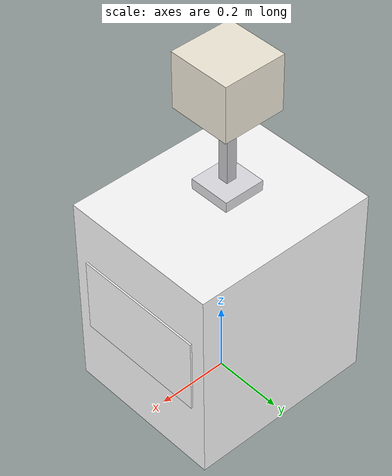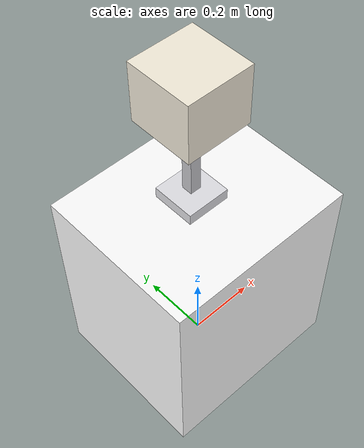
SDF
<?xml version="1.0"?>
<sdf version="1.9">
  <model name="nightstand">
    <static>true</static>
    <link name="body">

      <collision name="body_collision">
        <pose>0 0 0.28 0 0 0</pose>
        <geometry><box><size>0.54 0.46 0.58</size></box></geometry>
      </collision>
      <collision name="drawer_front_collision">
        <pose>0.26 0 0.30 0 0 0</pose>
        <geometry><box><size>0.03 0.38 0.22</size></box></geometry>
      </collision>
      <collision name="open_shelf_collision">
        <pose>0.22 0 0.12 0 0 0</pose>
        <geometry><box><size>0.02 0.34 0.12</size></box></geometry>
      </collision>
      <collision name="lamp_base_collision">
        <pose>-0.02 0 0.61 0 0 0</pose>
        <geometry><box><size>0.12 0.12 0.03</size></box></geometry>
      </collision>
      <collision name="lamp_stem_collision">
        <pose>-0.02 0 0.76 0 0 0</pose>
        <geometry><box><size>0.03 0.03 0.26</size></box></geometry>
      </collision>
      <collision name="lamp_shade_collision">
        <pose>-0.02 0 0.92 0 0 0</pose>
        <geometry><box><size>0.18 0.18 0.16</size></box></geometry>
      </collision>
      <visual name="body_visual">
        <pose>0 0 0.28 0 0 0</pose>
        <geometry><box><size>0.54 0.46 0.58</size></box></geometry>
        <material>
          <ambient>1 1 1 1</ambient>
          <diffuse>1 1 1 1</diffuse>
          <specular>0.05 0.05 0.05 1</specular>
          <pbr>
            <metal>
              <albedo_map>materials/textures/wood_albedo.jpg</albedo_map>
              <normal_map>materials/textures/wood_normal.jpg</normal_map>
              <roughness_map>materials/textures/wood_roughness.jpg</roughness_map>
              <metalness>0.0</metalness>
            </metal>
          </pbr>
        </material>
      </visual>

      <visual name="drawer_front">
        <pose>0.26 0 0.30 0 0 0</pose>
        <geometry><box><size>0.03 0.38 0.22</size></box></geometry>
        <material><ambient>1 1 1 1</ambient><diffuse>1 1 1 1</diffuse><specular>0.05 0.05 0.05 1</specular><pbr><metal><albedo_map>materials/textures/wood_albedo.jpg</albedo_map><normal_map>materials/textures/wood_normal.jpg</normal_map><roughness_map>materials/textures/wood_roughness.jpg</roughness_map><metalness>0.0</metalness></metal></pbr></material>
      </visual>
      <visual name="open_shelf">
        <pose>0.22 0 0.12 0 0 0</pose>
        <geometry><box><size>0.02 0.34 0.12</size></box></geometry>
        <material><ambient>1 1 1 1</ambient><diffuse>1 1 1 1</diffuse><specular>0.05 0.05 0.05 1</specular><pbr><metal><albedo_map>materials/textures/wood_albedo.jpg</albedo_map><normal_map>materials/textures/wood_normal.jpg</normal_map><roughness_map>materials/textures/wood_roughness.jpg</roughness_map><metalness>0.0</metalness></metal></pbr></material>
      </visual>

      <visual name="lamp_base">
        <pose>-0.02 0 0.61 0 0 0</pose>
        <geometry><box><size>0.12 0.12 0.03</size></box></geometry>
        <material><ambient>0.72 0.72 0.73 1</ambient><diffuse>0.88 0.88 0.90 1</diffuse></material>
      </visual>
      <visual name="lamp_stem">
        <pose>-0.02 0 0.76 0 0 0</pose>
        <geometry><box><size>0.03 0.03 0.26</size></box></geometry>
        <material><ambient>0.62 0.62 0.63 1</ambient><diffuse>0.78 0.78 0.80 1</diffuse></material>
      </visual>
      <visual name="lamp_shade">
        <pose>-0.02 0 0.92 0 0 0</pose>
        <geometry><box><size>0.18 0.18 0.16</size></box></geometry>
        <material><ambient>0.88 0.84 0.76 1</ambient><diffuse>0.96 0.93 0.86 1</diffuse></material>
      </visual>

    </link>
  </model>
</sdf>
